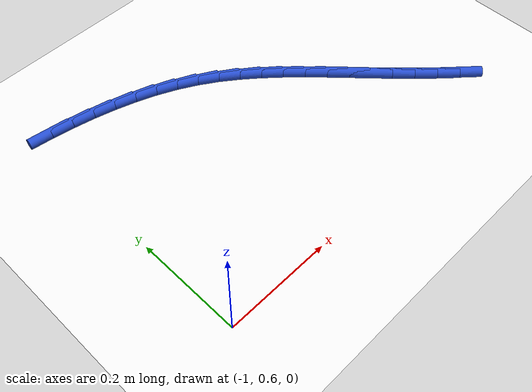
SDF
<sdf version="1.6">
 <world name="default">
  <model name="ground_plane">
   <static>1</static>
   <link name="link">
    <collision name="collision">
     <geometry><plane><normal>0 0 1</normal><size>100 100</size></plane></geometry>
     <surface><friction><ode><mu>100</mu><mu2>50</mu2></ode></friction></surface>
    </collision>
    <visual name="visual">
     <cast_shadows>0</cast_shadows>
     <geometry><plane><normal>0 0 1</normal><size>100 100</size></plane></geometry>
     <material>
      <script><uri>file://media/materials/scripts/gazebo.material</uri><name>Gazebo/WhiteGlow</name></script>
     </material>
    </visual>
   </link>
  </model>
  <model name="line">
   <link name="link_19">
    <pose>-0.3390740188905465 0.6675036710286545 0.01 0 1.57 -0.7466021573440412</pose>
    <collision name="collision">
     <geometry><cylinder><radius>0.01</radius><length>0.08</length></cylinder></geometry>
    </collision>
    <visual name="visual">
     <material>
      <script><name>Gazebo/Blue</name><uri>file://media/materials/scripts/gazebo.material</uri></script>
     </material>
     <geometry><cylinder><radius>0.01</radius><length>0.08</length></cylinder></geometry>
    </visual>
   </link>
   <link name="link_20">
    <pose>-0.3701137423060592 0.6962237874492514 0.01 0 1.57 -0.7679030759739089</pose>
    <collision name="collision">
     <geometry><cylinder><radius>0.01</radius><length>0.08</length></cylinder></geometry>
    </collision>
    <visual name="visual">
     <material>
      <script><name>Gazebo/Blue</name><uri>file://media/materials/scripts/gazebo.material</uri></script>
     </material>
     <geometry><cylinder><radius>0.01</radius><length>0.08</length></cylinder></geometry>
    </visual>
   </link>
   <link name="link_21">
    <pose>-0.40052126486484535 0.7255855347088467 0.01 0 1.57 -0.7931110564036938</pose>
    <collision name="collision">
     <geometry><cylinder><radius>0.01</radius><length>0.08</length></cylinder></geometry>
    </collision>
    <visual name="visual">
     <material>
      <script><name>Gazebo/Blue</name><uri>file://media/materials/scripts/gazebo.material</uri></script>
     </material>
     <geometry><cylinder><radius>0.01</radius><length>0.08</length></cylinder></geometry>
    </visual>
   </link>
   <link name="link_22">
    <pose>-0.43013300716440966 0.7556576211219381 0.01 0 1.57 -0.8100995542619669</pose>
    <collision name="collision">
     <geometry><cylinder><radius>0.01</radius><length>0.08</length></cylinder></geometry>
    </collision>
    <visual name="visual">
     <material>
      <script><name>Gazebo/Blue</name><uri>file://media/materials/scripts/gazebo.material</uri></script>
     </material>
     <geometry><cylinder><radius>0.01</radius><length>0.08</length></cylinder></geometry>
    </visual>
   </link>
   <link name="link_23">
    <pose>-0.45915545513932926 0.7861504790025189 0.01 0 1.57 -0.8172227649794207</pose>
    <collision name="collision">
     <geometry><cylinder><radius>0.01</radius><length>0.08</length></cylinder></geometry>
    </collision>
    <visual name="visual">
     <material>
      <script><name>Gazebo/Blue</name><uri>file://media/materials/scripts/gazebo.material</uri></script>
     </material>
     <geometry><cylinder><radius>0.01</radius><length>0.08</length></cylinder></geometry>
    </visual>
   </link>
   <link name="link_24">
    <pose>-0.48784473089824404 0.8167264857722645 0.01 0 1.57 -0.8143939105486303</pose>
    <collision name="collision">
     <geometry><cylinder><radius>0.01</radius><length>0.08</length></cylinder></geometry>
    </collision>
    <visual name="visual">
     <material>
      <script><name>Gazebo/Blue</name><uri>file://media/materials/scripts/gazebo.material</uri></script>
     </material>
     <geometry><cylinder><radius>0.01</radius><length>0.08</length></cylinder></geometry>
    </visual>
   </link>
   <link name="link_25">
    <pose>-0.5164569565497934 0.8470480188528491 0.01 0 1.57 -0.8014276752845729</pose>
    <collision name="collision">
     <geometry><cylinder><radius>0.01</radius><length>0.08</length></cylinder></geometry>
    </collision>
    <visual name="visual">
     <material>
      <script><name>Gazebo/Blue</name><uri>file://media/materials/scripts/gazebo.material</uri></script>
     </material>
     <geometry><cylinder><radius>0.01</radius><length>0.08</length></cylinder></geometry>
    </visual>
   </link>
   <link name="link_26">
    <pose>-0.5452482542026176 0.8767774556659486 0.01 0 1.57 -0.7780434507181213</pose>
    <collision name="collision">
     <geometry><cylinder><radius>0.01</radius><length>0.08</length></cylinder></geometry>
    </collision>
    <visual name="visual">
     <material>
      <script><name>Gazebo/Blue</name><uri>file://media/materials/scripts/gazebo.material</uri></script>
     </material>
     <geometry><cylinder><radius>0.01</radius><length>0.08</length></cylinder></geometry>
    </visual>
   </link>
   <link name="link_27">
    <pose>-0.5744747459653562 0.9055771736332373 0.01 0 1.57 -0.7439002639069995</pose>
    <collision name="collision">
     <geometry><cylinder><radius>0.01</radius><length>0.08</length></cylinder></geometry>
    </collision>
    <visual name="visual">
     <material>
      <script><name>Gazebo/Blue</name><uri>file://media/materials/scripts/gazebo.material</uri></script>
     </material>
     <geometry><cylinder><radius>0.01</radius><length>0.08</length></cylinder></geometry>
    </visual>
   </link>
   <link name="link_28">
    <pose>-0.6043925539466491 0.9331095501763912 0.01 0 1.57 -0.6986713291365025</pose>
    <collision name="collision">
     <geometry><cylinder><radius>0.01</radius><length>0.08</length></cylinder></geometry>
    </collision>
    <visual name="visual">
     <material>
      <script><name>Gazebo/Blue</name><uri>file://media/materials/scripts/gazebo.material</uri></script>
     </material>
     <geometry><cylinder><radius>0.01</radius><length>0.08</length></cylinder></geometry>
    </visual>
   </link>
   <link name="link_29">
    <pose>-0.6352578002551361 0.9590369627170845 0.01 0 1.57 -0.6421670598065952</pose>
    <collision name="collision">
     <geometry><cylinder><radius>0.01</radius><length>0.08</length></cylinder></geometry>
    </collision>
    <visual name="visual">
     <material>
      <script><name>Gazebo/Blue</name><uri>file://media/materials/scripts/gazebo.material</uri></script>
     </material>
     <geometry><cylinder><radius>0.01</radius><length>0.08</length></cylinder></geometry>
    </visual>
   </link>
   <link name="link_30">
    <pose>-0.6673266069994568 0.9830217886769923 0.01 0 1.57 -0.5745119205285073</pose>
    <collision name="collision">
     <geometry><cylinder><radius>0.01</radius><length>0.08</length></cylinder></geometry>
    </collision>
    <visual name="visual">
     <material>
      <script><name>Gazebo/Blue</name><uri>file://media/materials/scripts/gazebo.material</uri></script>
     </material>
     <geometry><cylinder><radius>0.01</radius><length>0.08</length></cylinder></geometry>
    </visual>
   </link>
   <link name="link_31">
    <pose>-0.7008550201191719 1.0047264960591102 0.01 0 1.57 -0.4999084351422278</pose>
    <collision name="collision">
     <geometry><cylinder><radius>0.01</radius><length>0.08</length></cylinder></geometry>
    </collision>
    <visual name="visual">
     <material>
      <script><name>Gazebo/Blue</name><uri>file://media/materials/scripts/gazebo.material</uri></script>
     </material>
     <geometry><cylinder><radius>0.01</radius><length>0.08</length></cylinder></geometry>
    </visual>
   </link>
   <link name="link_32">
    <pose>-0.7360053468735837 1.0239250281981043 0.01 0 1.57 -0.4296072061062179</pose>
    <collision name="collision">
     <geometry><cylinder><radius>0.01</radius><length>0.08</length></cylinder></geometry>
    </collision>
    <visual name="visual">
     <material>
      <script><name>Gazebo/Blue</name><uri>file://media/materials/scripts/gazebo.material</uri></script>
     </material>
     <geometry><cylinder><radius>0.01</radius><length>0.08</length></cylinder></geometry>
    </visual>
   </link>
   <link name="link_33">
    <pose>-0.7726636318915434 1.0407198637597672 0.01 0 1.57 -0.3657477749166057</pose>
    <collision name="collision">
     <geometry><cylinder><radius>0.01</radius><length>0.08</length></cylinder></geometry>
    </collision>
    <visual name="visual">
     <material>
      <script><name>Gazebo/Blue</name><uri>file://media/materials/scripts/gazebo.material</uri></script>
     </material>
     <geometry><cylinder><radius>0.01</radius><length>0.08</length></cylinder></geometry>
    </visual>
   </link>
   <link name="link_34">
    <pose>-0.8106652773804605 1.0552737060760748 0.01 0 1.57 -0.3082627211297666</pose>
    <collision name="collision">
     <geometry><cylinder><radius>0.01</radius><length>0.08</length></cylinder></geometry>
    </collision>
    <visual name="visual">
     <material>
      <script><name>Gazebo/Blue</name><uri>file://media/materials/scripts/gazebo.material</uri></script>
     </material>
     <geometry><cylinder><radius>0.01</radius><length>0.08</length></cylinder></geometry>
    </visual>
   </link>
   <link name="link_35">
    <pose>-0.8498456855477432 1.067749258479003 0.01 0 1.57 -0.2569152446970539</pose>
    <collision name="collision">
     <geometry><cylinder><radius>0.01</radius><length>0.08</length></cylinder></geometry>
    </collision>
    <visual name="visual">
     <material>
      <script><name>Gazebo/Blue</name><uri>file://media/materials/scripts/gazebo.material</uri></script>
     </material>
     <geometry><cylinder><radius>0.01</radius><length>0.08</length></cylinder></geometry>
    </visual>
   </link>
   <link name="link_36">
    <pose>-0.8900402586008005 1.0783092243005266 0.01 0 1.57 -0.21137074535099873</pose>
    <collision name="collision">
     <geometry><cylinder><radius>0.01</radius><length>0.08</length></cylinder></geometry>
    </collision>
    <visual name="visual">
     <material>
      <script><name>Gazebo/Blue</name><uri>file://media/materials/scripts/gazebo.material</uri></script>
     </material>
     <geometry><cylinder><radius>0.01</radius><length>0.08</length></cylinder></geometry>
    </visual>
   </link>
   <link name="link_37">
    <pose>-0.9310843987470419 1.0871163068726226 0.01 0 1.57 -0.17125247584225567</pose>
    <collision name="collision">
     <geometry><cylinder><radius>0.01</radius><length>0.08</length></cylinder></geometry>
    </collision>
    <visual name="visual">
     <material>
      <script><name>Gazebo/Blue</name><uri>file://media/materials/scripts/gazebo.material</uri></script>
     </material>
     <geometry><cylinder><radius>0.01</radius><length>0.08</length></cylinder></geometry>
    </visual>
   </link>
   <link name="link_38">
    <pose>-0.9728135081938752 1.0943332095272662 0.01 0 1.57 -0.13618138255534126</pose>
    <collision name="collision">
     <geometry><cylinder><radius>0.01</radius><length>0.08</length></cylinder></geometry>
    </collision>
    <visual name="visual">
     <material>
      <script><name>Gazebo/Blue</name><uri>file://media/materials/scripts/gazebo.material</uri></script>
     </material>
     <geometry><cylinder><radius>0.01</radius><length>0.08</length></cylinder></geometry>
    </visual>
   </link>
  </model>
 </world>
</sdf>
